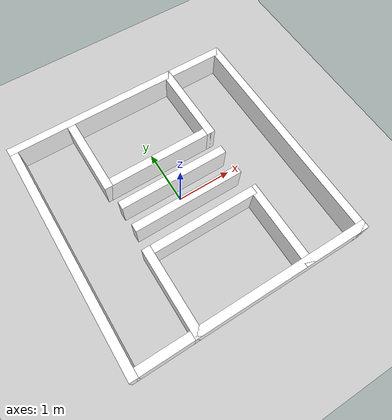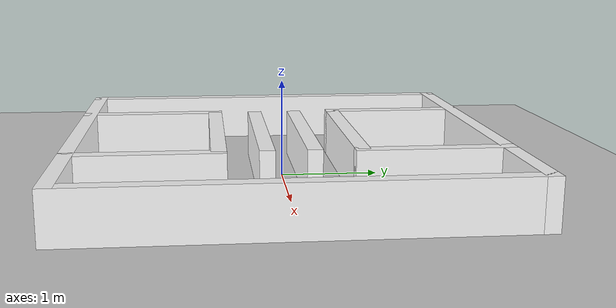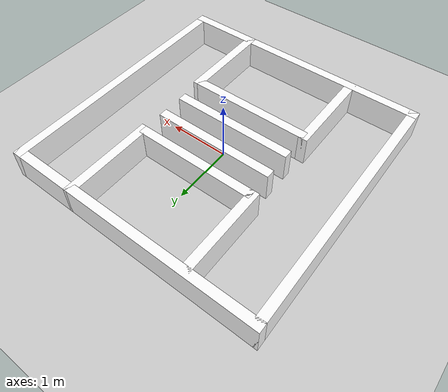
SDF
<sdf version='1.6'>
  <world name='default'>
    <!-- A global light source -->
    <include>
      <uri>model://sun</uri>
    </include>

    <!-- A ground plane -->
    <include>
      <uri>model://ground_plane</uri>
    </include>

    <physics type="ode">
      <real_time_update_rate>100.0</real_time_update_rate>
      <max_step_size>0.01</max_step_size>
      <real_time_factor>0.5</real_time_factor>
      <ode>
        <solver>
          <type>quick</type>
          <iters>150</iters>
          <precon_iters>0</precon_iters>
          <sor>1.400000</sor>
          <use_dynamic_moi_rescaling>1</use_dynamic_moi_rescaling>
        </solver>
        <constraints>
          <cfm>0.00001</cfm>
          <erp>0.2</erp>
          <contact_max_correcting_vel>2000.000000</contact_max_correcting_vel>
          <contact_surface_layer>0.01000</contact_surface_layer>
        </constraints>
      </ode>
    </physics>

    <!-- Load world -->
    <include>
      <uri>model://three_corridors</uri>
    </include>

    <scene>
      <ambient>0.4 0.4 0.4 1</ambient>
      <background>0.7 0.7 0.7 1</background>
      <shadows>false</shadows>
    </scene>

    <gui fullscreen='0'>
      <camera name='user_camera'>
        <pose>0.8 0.0 12.0 0 1.5708 0</pose>
        <view_controller>orbit</view_controller>
      </camera>
    </gui>
  </world>
</sdf>

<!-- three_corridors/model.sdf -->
<sdf version='1.6'>
  <model name='simple'>
    <link name='fixed'></link>
    <pose frame=''>0 0 0 0 -0 0</pose>
    <link name='Wall_0'>
      <collision name='Wall_0_Collision'>
        <geometry>
          <box>
            <size>4.3 0.15 0.5</size>
          </box>
        </geometry>
        <pose frame=''>0 0 0.25 0 -0 0</pose>
      </collision>
      <visual name='Wall_0_Visual'>
        <pose frame=''>0 0 0.25 0 -0 0</pose>
        <geometry>
          <box>
            <size>4.3 0.15 0.5</size>
          </box>
        </geometry>
        <material>
          <ambient>1 1 1 1</ambient>
        </material>
      </visual>
      <pose frame=''>0 2.075 0 0 -0 0</pose>
    </link>
    <link name='Wall_1'>
      <collision name='Wall_1_Collision'>
        <geometry>
          <box>
            <size>4.3 0.15 0.5</size>
          </box>
        </geometry>
        <pose frame=''>0 0 0.25 0 -0 0</pose>
      </collision>
      <visual name='Wall_1_Visual'>
        <pose frame=''>0 0 0.25 0 -0 0</pose>
        <geometry>
          <box>
            <size>4.3 0.15 0.5</size>
          </box>
        </geometry>
        <material>
          <ambient>1 1 1 1</ambient>
        </material>
      </visual>
      <pose frame=''>-2.075 0 0 0 0 -1.5708</pose>
    </link>
    <link name='Wall_2'>
      <collision name='Wall_2_Collision'>
        <geometry>
          <box>
            <size>4.3 0.15 0.5</size>
          </box>
        </geometry>
        <pose frame=''>0 0 0.25 0 -0 0</pose>
      </collision>
      <visual name='Wall_2_Visual'>
        <pose frame=''>0 0 0.25 0 -0 0</pose>
        <geometry>
          <box>
            <size>4.3 0.15 0.5</size>
          </box>
        </geometry>
        <material>
          <ambient>1 1 1 1</ambient>
        </material>
      </visual>
      <pose frame=''>0 -2.075 0 0 -0 0</pose>
    </link>
    <link name='Wall_3'>
      <collision name='Wall_3_Collision'>
        <geometry>
          <box>
            <size>4.3 0.15 0.5</size>
          </box>
        </geometry>
        <pose frame=''>0 0 0.25 0 -0 0</pose>
      </collision>
      <visual name='Wall_3_Visual'>
        <pose frame=''>0 0 0.25 0 -0 0</pose>
        <geometry>
          <box>
            <size>4.3 0.15 0.5</size>
          </box>
        </geometry>
        <material>
          <ambient>1 1 1 1</ambient>
        </material>
      </visual>
      <pose frame=''>2.075 0 0 0 -0 1.5708</pose>
    </link>
    <link name='Corridor_Wall_1'>
      <collision name='Corridor_Wall_1_Collision'>
        <geometry>
          <box>
            <size>2.0 0.15 0.5</size>
          </box>
        </geometry>
        <pose frame=''>0 0 0.25 0 -0 0</pose>
      </collision>
      <visual name='Corridor_Wall_1_Visual'>
        <pose frame=''>0 0 0.25 0 -0 0</pose>
        <geometry>
          <box>
            <size>2.0 0.15 0.5</size>
          </box>
        </geometry>
        <material>
          <ambient>1 1 1 1</ambient>
        </material>
      </visual>
      <pose frame=''> 0 -0.225 0 0 0 0</pose>
    </link>
    <link name='Corridor_Wall_2'>
      <collision name='Corridor_Wall_2_Collision'>
        <geometry>
          <box>
            <size>2.0 0.15 0.5</size>
          </box>
        </geometry>
        <pose frame=''>0 0 0.25 0 -0 0</pose>
      </collision>
      <visual name='Corridor_Wall_2_Visual'>
        <pose frame=''>0 0 0.25 0 -0 0</pose>
        <geometry>
          <box>
            <size>2.0 0.15 0.5</size>
          </box>
        </geometry>
        <material>
          <ambient>1 1 1 1</ambient>
        </material>
      </visual>
      <pose frame=''> 0 0.225 0 0 0 0</pose>
    </link>
    <link name='Corridor_Wall_3'>
      <collision name='Corridor_Wall_3_Collision'>
        <geometry>
          <box>
            <size>2.0 0.15 0.5</size>
          </box>
        </geometry>
        <pose frame=''>0 0 0.25 0 -0 0</pose>
      </collision>
      <visual name='Corridor_Wall_3_Visual'>
        <pose frame=''>0 0 0.25 0 -0 0</pose>
        <geometry>
          <box>
            <size>2.0 0.15 0.5</size>
          </box>
        </geometry>
        <material>
          <ambient>1 1 1 1</ambient>
        </material>
      </visual>
      <pose frame=''> 0 0.675 0 0 0 0</pose>
    </link>
    <link name='Corridor_Wall_4'>
      <collision name='Corridor_Wall_4_Collision'>
        <geometry>
          <box>
            <size>2.0 0.15 0.5</size>
          </box>
        </geometry>
        <pose frame=''>0 0 0.25 0 -0 0</pose>
      </collision>
      <visual name='Corridor_Wall_4_Visual'>
        <pose frame=''>0 0 0.25 0 -0 0</pose>
        <geometry>
          <box>
            <size>2.0 0.15 0.5</size>
          </box>
        </geometry>
        <material>
          <ambient>1 1 1 1</ambient>
        </material>
      </visual>
      <pose frame=''> 0 -0.675 0 0 0 0</pose>
    </link>
    <link name='Barrier_Wall_1'>
      <collision name='Barrier_Wall_1_Collision'>
        <geometry>
          <box>
            <size>1.55 0.15 0.5</size>
          </box>
        </geometry>
        <pose frame=''>0 0 0.25 0 -0 0</pose>
      </collision>
      <visual name='Barrier_Wall_1_Visual'>
        <pose frame=''>0 0 0.25 0 -0 0</pose>
        <geometry>
          <box>
            <size>1.55 0.15 0.5</size>
          </box>
        </geometry>
        <material>
          <ambient>1 1 1 1</ambient>
        </material>
      </visual>
      <pose frame=''>1.0 1.375 0 0 0 1.5708</pose>
    </link>
    <link name='Barrier_Wall_2'>
      <collision name='Barrier_Wall_2_Collision'>
        <geometry>
          <box>
            <size>1.55 0.15 0.5</size>
          </box>
        </geometry>
        <pose frame=''>0 0 0.25 0 -0 0</pose>
      </collision>
      <visual name='Barrier_Wall_2_Visual'>
        <pose frame=''>0 0 0.25 0 -0 0</pose>
        <geometry>
          <box>
            <size>1.55 0.15 0.5</size>
          </box>
        </geometry>
        <material>
          <ambient>1 1 1 1</ambient>
        </material>
      </visual>
      <pose frame=''>1.0 -1.375 0 0 0 1.5708</pose>
    </link>
    <link name='Barrier_Wall_3'>
      <collision name='Barrier_Wall_3_Collision'>
        <geometry>
          <box>
            <size>1.55 0.15 0.5</size>
          </box>
        </geometry>
        <pose frame=''>0 0 0.25 0 -0 0</pose>
      </collision>
      <visual name='Barrier_Wall_3_Visual'>
        <pose frame=''>0 0 0.25 0 -0 0</pose>
        <geometry>
          <box>
            <size>1.55 0.15 0.5</size>
          </box>
        </geometry>
        <material>
          <ambient>1 1 1 1</ambient>
        </material>
      </visual>
      <pose frame=''>-1.0 1.375 0 0 0 1.5708</pose>
    </link>
    <link name='Barrier_Wall_4'>
      <collision name='Barrier_Wall_4_Collision'>
        <geometry>
          <box>
            <size>1.55 0.15 0.5</size>
          </box>
        </geometry>
        <pose frame=''>0 0 0.25 0 -0 0</pose>
      </collision>
      <visual name='Barrier_Wall_4_Visual'>
        <pose frame=''>0 0 0.25 0 -0 0</pose>
        <geometry>
          <box>
            <size>1.55 0.15 0.5</size>
          </box>
        </geometry>
        <material>
          <ambient>1 1 1 1</ambient>
        </material>
      </visual>
      <pose frame=''>-1.0 -1.375 0 0 0 1.5708</pose>
    </link>
    <static>1</static>
  </model>
</sdf>
